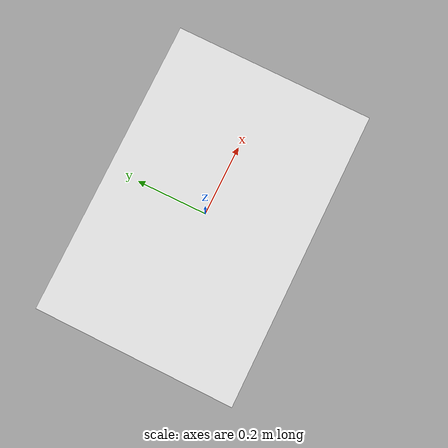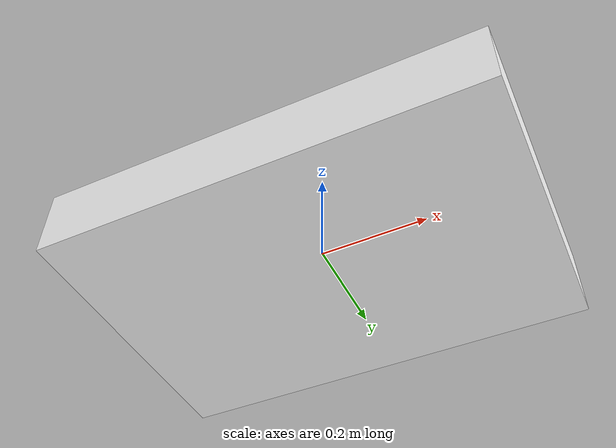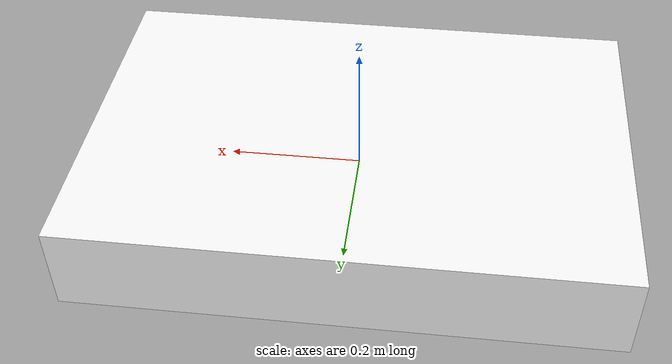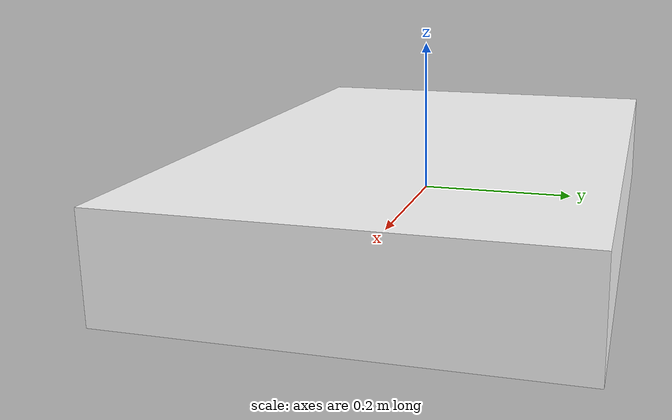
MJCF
<mujoco>
  <compiler angle="radian" assetdir="assets" autolimits="true"/>

  <asset>

    <!-- Textures -->
    <texture type="2d" colorspace="sRGB" name="carton_01_UV" file="carton_01_UV.png"/>

    <!-- Materials -->
    <material name="MI_carton_01" rgba="1 1 1 1" reflectance="0.5" metallic="0.0" roughness="0.5">
      <layer texture="carton_01_UV" role="rgb"/>
    </material>

    <!-- Visual meshes -->
    <mesh class="visual" name="V_carton_01" file="V_carton_01.obj"/>

  </asset>

  <default>
      <default class="visual">
        <geom type="mesh" contype="0" conaffinity="0" group="2" density="0"/>
      </default>
  </default>

  <worldbody>

    <body name="B_carton_01" pos="0.0 0.0 0.0" quat="1.0 0.0 0.0 0.0">
      <geom class="visual" mesh="V_carton_01" pos="0.0 0.0 0.0" quat="1.0 0.0 0.0 0.0" material="MI_carton_01"/>
    </body>
  </worldbody>

</mujoco>
